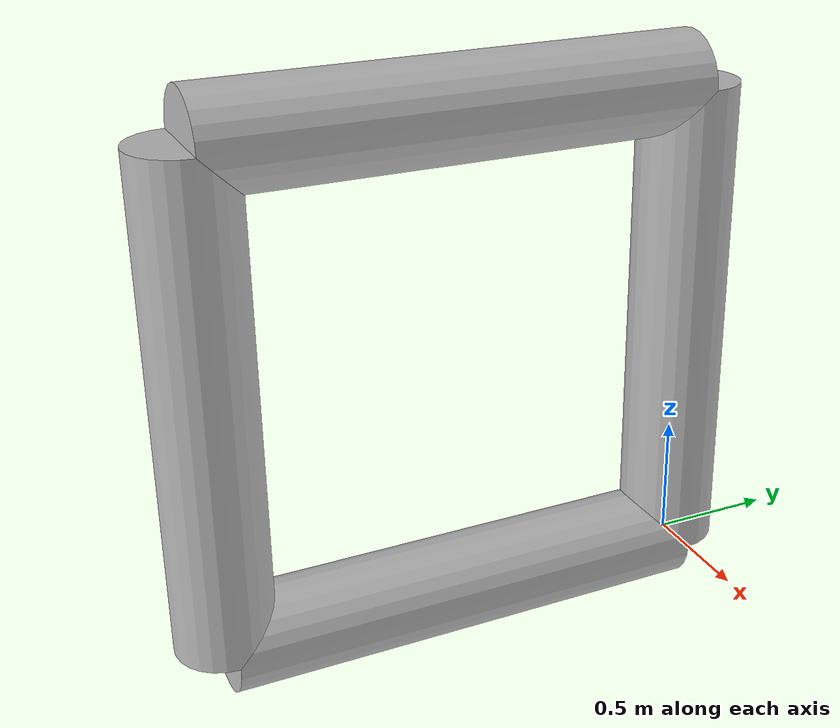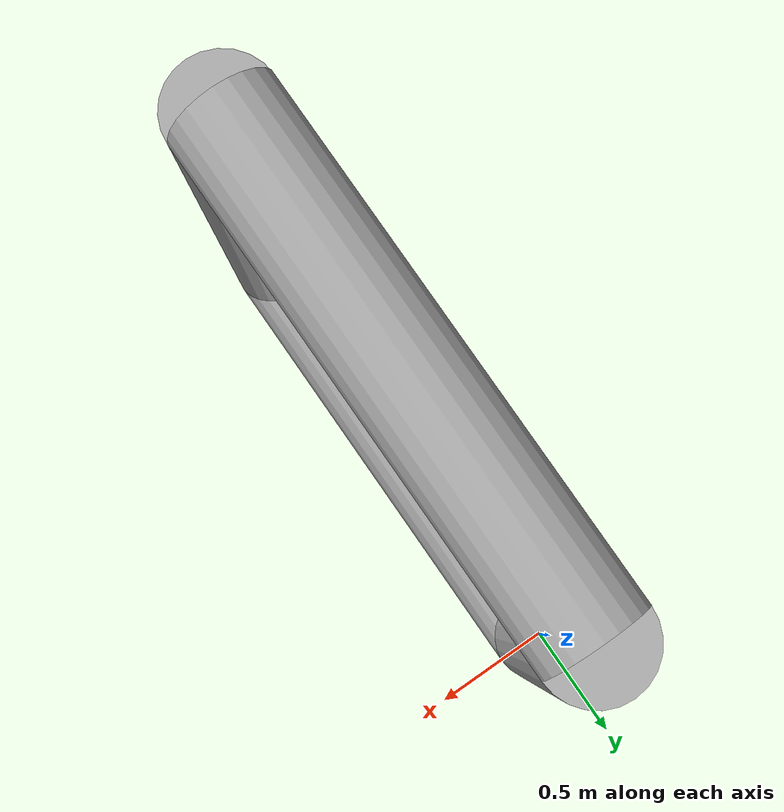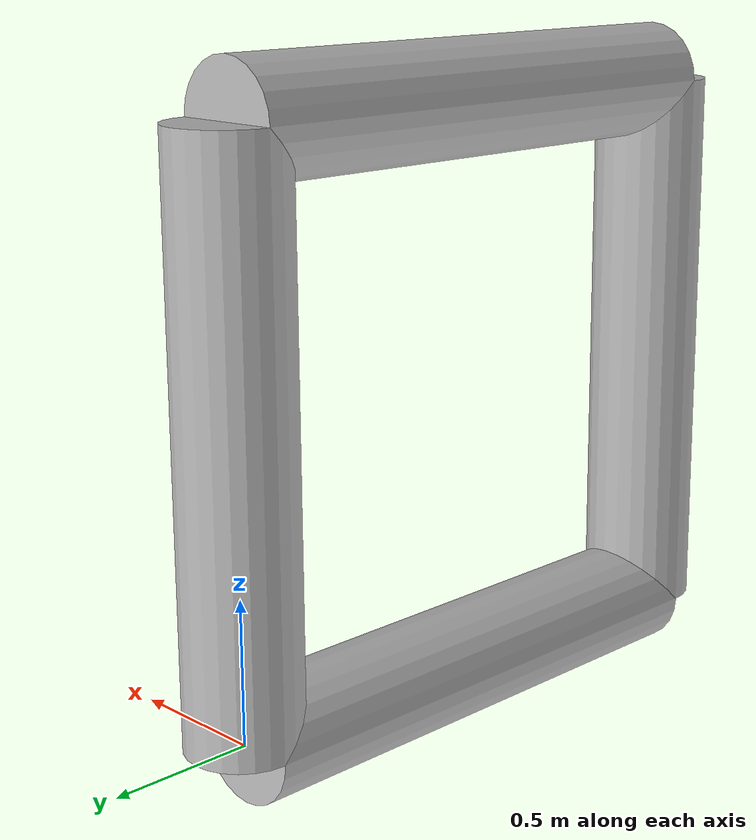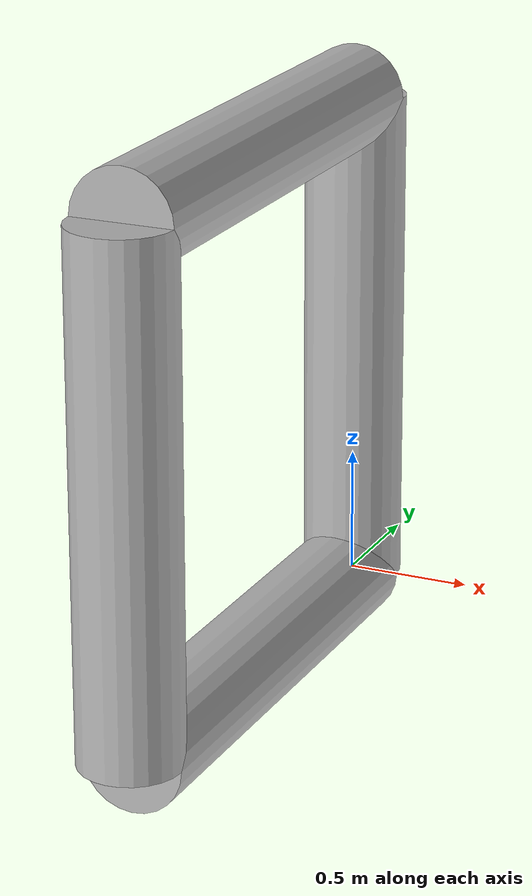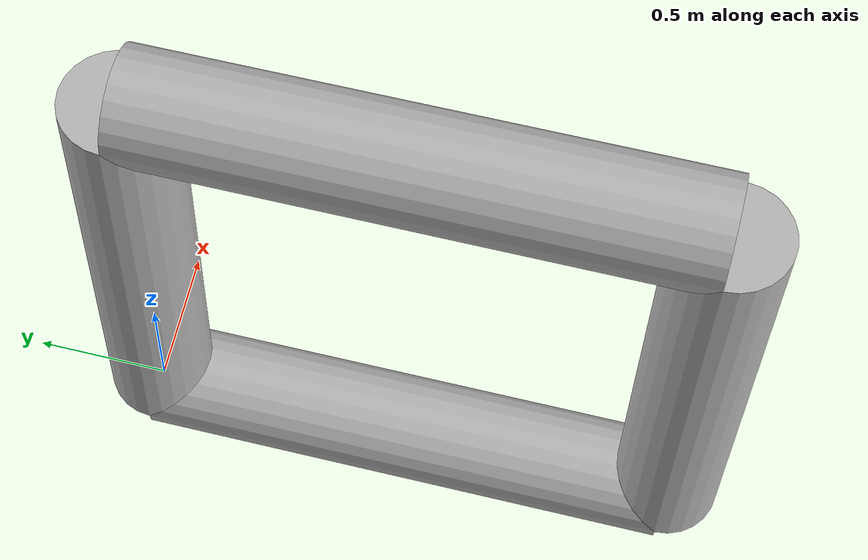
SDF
<sdf version='1.6'>
  <model name='four_bar_linkage'>
    <link name='l0'>
      <pose frame=''>0 0 0 0 -0 0</pose>
      <inertial>
        <pose frame=''>0 0 1 0 -0 0</pose>
        <mass>1</mass>
        <inertia>
          <ixx>0</ixx>
          <ixy>0</ixy>
          <ixz>0</ixz>
          <iyy>0</iyy>
          <iyz>0</iyz>
          <izz>0</izz>
        </inertia>
      </inertial>
      <visual name='l0_visual'>
        <pose frame=''>0 0 1 0 -0 0</pose>
        <geometry>
          <cylinder>
            <length>0.1</length>
            <radius>0.01</radius>
          </cylinder>
        </geometry>
      </visual>
    </link>
    <link name='l1'>
      <pose frame=''>0 0 0 0 -0 0</pose>
      <inertial>
        <pose frame=''>0 0 1 0 -0 0</pose>
        <mass>100</mass>
        <inertia>
          <ixx>3</ixx>
          <ixy>0</ixy>
          <ixz>0</ixz>
          <iyy>2</iyy>
          <iyz>0</iyz>
          <izz>1</izz>
        </inertia>
      </inertial>
      <visual name='l1_visual'>
        <pose frame=''>0 0 1 0 -0 0</pose>
        <geometry>
          <cylinder>
            <length>2</length>
            <radius>0.2</radius>
          </cylinder>
        </geometry>
      </visual>
    </link>
    <joint name='j0' type='revolute'>
      <child>l1</child>
      <parent>l0</parent>
      <axis>
        <xyz>1 0 0</xyz>
        <limit>
          <lower>0</lower>
          <upper>0</upper>
          <effort>1000</effort>
          <velocity>0.5</velocity>
        </limit>
        <dynamics>
          <damping>500</damping>
          <friction>0</friction>
          <spring_reference>0</spring_reference>
          <spring_stiffness>0</spring_stiffness>
        </dynamics>
        <use_parent_model_frame>1</use_parent_model_frame>
      </axis>
    </joint>
    <link name='l2'>
      <pose frame=''>0 0 2 1.5708 -0 0</pose>
      <inertial>
        <pose frame=''>0 0 1 0 -0 0</pose>
        <mass>15</mass>
        <inertia>
          <ixx>1</ixx>
          <ixy>0</ixy>
          <ixz>0</ixz>
          <iyy>2</iyy>
          <iyz>0</iyz>
          <izz>3</izz>
        </inertia>
      </inertial>
      <visual name='l2_visual'>
        <pose frame=''>0 0 1 0 -0 0</pose>
        <geometry>
          <cylinder>
            <length>2</length>
            <radius>0.2</radius>
          </cylinder>
        </geometry>
      </visual>
    </link>
    <joint name='j1' type='revolute'>
      <child>l2</child>
      <parent>l1</parent>
      <axis>
        <xyz>1 0 0</xyz>
        <limit>
          <lower>-1.57</lower>
          <upper>1.57</upper>
          <effort>1000</effort>
          <velocity>0.5</velocity>
        </limit>
        <dynamics>
          <damping>500</damping>
          <friction>0</friction>
          <spring_reference>0</spring_reference>
          <spring_stiffness>0</spring_stiffness>
        </dynamics>
        <use_parent_model_frame>1</use_parent_model_frame>
      </axis>
    </joint>
    <link name='l3'>
      <pose frame=''>0 -2 2 3.14159 -0 0</pose>
      <inertial>
        <pose frame=''>0 0 1 0 -0 0</pose>
        <mass>15</mass>
        <inertia>
          <ixx>1</ixx>
          <ixy>0</ixy>
          <ixz>0</ixz>
          <iyy>2</iyy>
          <iyz>0</iyz>
          <izz>3</izz>
        </inertia>
      </inertial>
      <visual name='l3_visual'>
        <pose frame=''>0 0 1 0 -0 0</pose>
        <geometry>
          <cylinder>
            <length>2</length>
            <radius>0.2</radius>
          </cylinder>
        </geometry>
      </visual>
    </link>
    <joint name='j2' type='revolute'>
      <child>l3</child>
      <parent>l2</parent>
      <axis>
        <xyz>1 0 0</xyz>
        <limit>
          <lower>-1.57</lower>
          <upper>1.57</upper>
          <effort>1000</effort>
          <velocity>0.5</velocity>
        </limit>
        <dynamics>
          <damping>500</damping>
          <friction>0</friction>
          <spring_reference>0</spring_reference>
          <spring_stiffness>0</spring_stiffness>
        </dynamics>
        <use_parent_model_frame>1</use_parent_model_frame>
      </axis>
    </joint>
    <link name='l4'>
      <pose frame=''>0 -2 0 -1.5708 -0 0</pose>
      <inertial>
        <pose frame=''>0 0 1 0 -0 0</pose>
        <mass>100</mass>
        <inertia>
          <ixx>3</ixx>
          <ixy>0</ixy>
          <ixz>0</ixz>
          <iyy>2</iyy>
          <iyz>0</iyz>
          <izz>1</izz>
        </inertia>
      </inertial>
      <visual name='l4_visual'>
        <pose frame=''>0 0 1 0 -0 0</pose>
        <geometry>
          <cylinder>
            <length>2</length>
            <radius>0.2</radius>
          </cylinder>
        </geometry>
      </visual>
    </link>
    <joint name='j3' type='revolute'>
      <child>l4</child>
      <parent>l3</parent>
      <axis>
        <xyz>1 0 0</xyz>
        <limit>
          <lower>-1.57</lower>
          <upper>1.57</upper>
          <effort>1000</effort>
          <velocity>0.5</velocity>
        </limit>
        <dynamics>
          <damping>500</damping>
          <friction>0</friction>
          <spring_reference>0</spring_reference>
          <spring_stiffness>0</spring_stiffness>
        </dynamics>
        <use_parent_model_frame>1</use_parent_model_frame>
      </axis>
    </joint>
    <joint name='j4' type='revolute'>
      <child>l4</child>
      <parent>l1</parent>
      <axis>
        <xyz>1 0 0</xyz>
        <limit>
          <lower>-1.57</lower>
          <upper>1.57</upper>
          <effort>1000</effort>
          <velocity>0.5</velocity>
        </limit>
        <dynamics>
          <damping>500</damping>
          <friction>0</friction>
          <spring_reference>0</spring_reference>
          <spring_stiffness>0</spring_stiffness>
        </dynamics>
        <use_parent_model_frame>1</use_parent_model_frame>
      </axis>
    </joint>
  </model>
</sdf>
